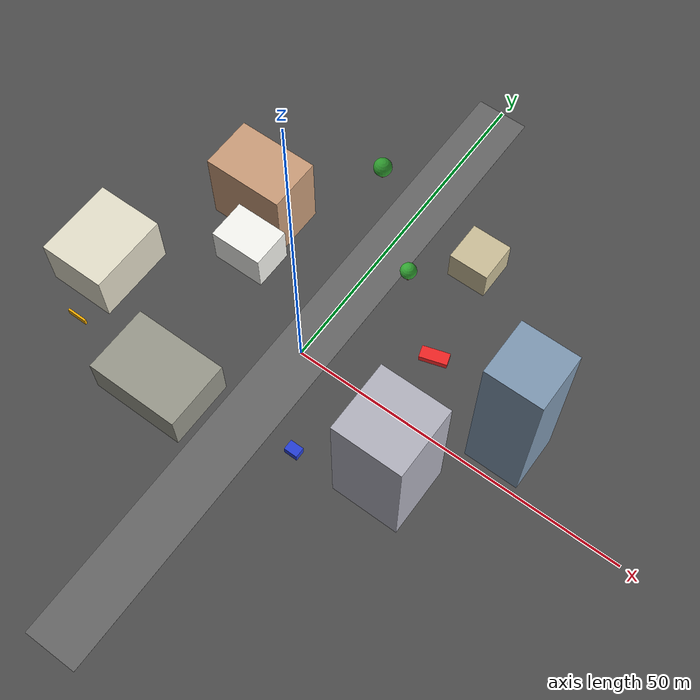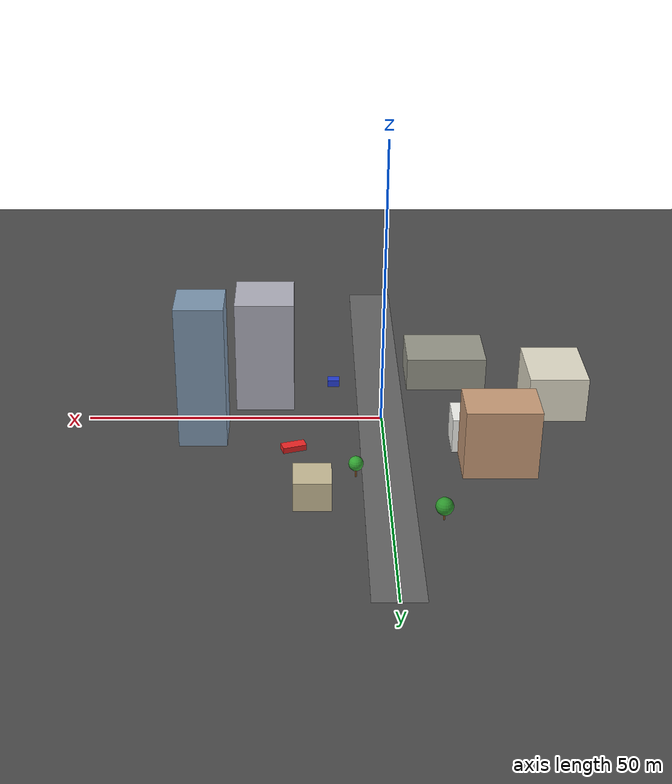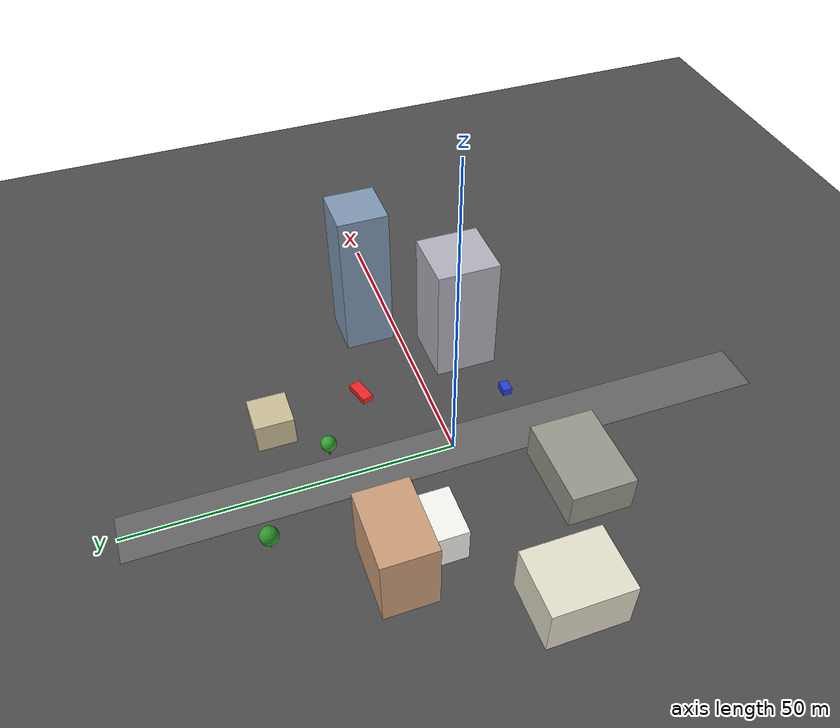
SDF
<?xml version="1.0" ?>
<!--
  urban_city.sdf — Minimal urban environment for VLA navigation benchmark.
  Uses simple geometry primitives styled as buildings, roads, and landmarks.
  Compatible with Gazebo Harmonic (gz-sim).
-->
<sdf version="1.9">
  <world name="urban_city">

    <!-- ── Physics ──────────────────────────────────────────────────────── -->
    <physics type="ode">
      <max_step_size>0.004</max_step_size>
      <real_time_factor>1.0</real_time_factor>
      <real_time_update_rate>250</real_time_update_rate>
    </physics>

    <!-- ── Plugins ──────────────────────────────────────────────────────── -->
    <plugin filename="gz-sim-physics-system"        name="gz::sim::systems::Physics"/>
    <plugin filename="gz-sim-scene-broadcaster-system" name="gz::sim::systems::SceneBroadcaster"/>
    <plugin filename="gz-sim-user-commands-system"  name="gz::sim::systems::UserCommands"/>
    <!-- Sensors plugin without render_engine — camera rendering is not
         needed for Milestone 1 and avoids Ogre assertion crashes on cleanup. -->
    <plugin filename="gz-sim-sensors-system"        name="gz::sim::systems::Sensors"/>
    <plugin filename="gz-sim-imu-system"            name="gz::sim::systems::Imu"/>
    <plugin filename="gz-sim-air-pressure-system"   name="gz::sim::systems::AirPressure"/>
    <plugin filename="gz-sim-magnetometer-system"   name="gz::sim::systems::Magnetometer"/>
    <plugin filename="gz-sim-navsat-system"          name="gz::sim::systems::NavSat"/>
    <plugin filename="gz-sim-apply-link-wrench-system" name="gz::sim::systems::ApplyLinkWrench"/>

    <!-- ── Lighting ─────────────────────────────────────────────────────── -->
    <light type="directional" name="sun">
      <cast_shadows>true</cast_shadows>
      <pose>0 0 50 0 0 0</pose>
      <diffuse>0.9 0.9 0.85 1</diffuse>
      <specular>0.3 0.3 0.3 1</specular>
      <direction>-0.5 0.3 -0.9</direction>
    </light>

    <!-- Ambient skylight -->
    <scene>
      <ambient>0.6 0.6 0.65 1.0</ambient>
      <background>0.55 0.72 0.95 1.0</background>
    </scene>

    <!-- ── Ground plane (asphalt) ───────────────────────────────────────── -->
    <model name="ground_plane">
      <static>true</static>
      <link name="link">
        <collision name="collision">
          <geometry><plane><normal>0 0 1</normal><size>200 200</size></plane></geometry>
        </collision>
        <visual name="visual">
          <geometry><plane><normal>0 0 1</normal><size>200 200</size></plane></geometry>
          <material>
            <ambient>0.25 0.25 0.25 1</ambient>
            <diffuse>0.3 0.3 0.3 1</diffuse>
          </material>
        </visual>
      </link>
    </model>

    <!-- ── Road (lighter strip) ─────────────────────────────────────────── -->
    <model name="road_ns">
      <static>true</static>
      <pose>0 0 0.01 0 0 0</pose>
      <link name="link">
        <visual name="visual">
          <geometry><box><size>8 100 0.02</size></box></geometry>
          <material>
            <ambient>0.35 0.35 0.35 1</ambient>
            <diffuse>0.4 0.4 0.4 1</diffuse>
          </material>
        </visual>
      </link>
    </model>

    <!-- ── Buildings ────────────────────────────────────────────────────── -->

    <!-- Building A — tall office tower -->
    <model name="building_a">
      <static>true</static>
      <pose>20 -8 10 0 0 0</pose>
      <link name="link">
        <collision name="col"><geometry><box><size>10 10 20</size></box></geometry></collision>
        <visual name="vis">
          <geometry><box><size>10 10 20</size></box></geometry>
          <material><ambient>0.6 0.6 0.65 1</ambient><diffuse>0.7 0.7 0.75 1</diffuse></material>
        </visual>
      </link>
    </model>

    <!-- Building B — medium apartment block -->
    <model name="building_b">
      <static>true</static>
      <pose>-18 15 6 0 0 0</pose>
      <link name="link">
        <collision name="col"><geometry><box><size>12 8 12</size></box></geometry></collision>
        <visual name="vis">
          <geometry><box><size>12 8 12</size></box></geometry>
          <material><ambient>0.72 0.55 0.40 1</ambient><diffuse>0.80 0.62 0.48 1</diffuse></material>
        </visual>
      </link>
    </model>

    <!-- Building C — short warehouse -->
    <model name="building_c">
      <static>true</static>
      <pose>-12 -15 3 0 0 0</pose>
      <link name="link">
        <collision name="col"><geometry><box><size>14 10 6</size></box></geometry></collision>
        <visual name="vis">
          <geometry><box><size>14 10 6</size></box></geometry>
          <material><ambient>0.55 0.55 0.50 1</ambient><diffuse>0.60 0.60 0.55 1</diffuse></material>
        </visual>
      </link>
    </model>

    <!-- Building D — glass-style tower -->
    <model name="building_d">
      <static>true</static>
      <pose>30 5 12.5 0 0 0</pose>
      <link name="link">
        <collision name="col"><geometry><box><size>8 8 25</size></box></geometry></collision>
        <visual name="vis">
          <geometry><box><size>8 8 25</size></box></geometry>
          <material><ambient>0.45 0.55 0.65 1</ambient><diffuse>0.5 0.6 0.7 1</diffuse></material>
        </visual>
      </link>
    </model>

    <!-- Building E — residential -->
    <model name="building_e">
      <static>true</static>
      <pose>-30 -5 4 0 0 0</pose>
      <link name="link">
        <collision name="col"><geometry><box><size>10 12 8</size></box></geometry></collision>
        <visual name="vis">
          <geometry><box><size>10 12 8</size></box></geometry>
          <material><ambient>0.85 0.82 0.75 1</ambient><diffuse>0.90 0.88 0.80 1</diffuse></material>
        </visual>
      </link>
    </model>

    <!-- Building F — small shop -->
    <model name="building_f">
      <static>true</static>
      <pose>12 25 2.5 0 0 0</pose>
      <link name="link">
        <collision name="col"><geometry><box><size>6 6 5</size></box></geometry></collision>
        <visual name="vis">
          <geometry><box><size>6 6 5</size></box></geometry>
          <material><ambient>0.75 0.70 0.55 1</ambient><diffuse>0.80 0.75 0.60 1</diffuse></material>
        </visual>
      </link>
    </model>

    <!-- ── Landmark objects ─────────────────────────────────────────────── -->

    <!-- Red car (east side) — referenced by Task 1 -->
    <model name="red_car">
      <static>true</static>
      <pose>15 10 0.5 0 0 0.3</pose>
      <link name="link">
        <collision name="col"><geometry><box><size>4 1.8 1.0</size></box></geometry></collision>
        <visual name="vis">
          <geometry><box><size>4 1.8 1.0</size></box></geometry>
          <material><ambient>0.85 0.10 0.10 1</ambient><diffuse>0.95 0.15 0.15 1</diffuse></material>
        </visual>
      </link>
    </model>

    <!-- Blue dumpster (alley) — referenced by Task 5 -->
    <model name="blue_dumpster">
      <static>true</static>
      <pose>8 -12 0.6 0 0 0</pose>
      <link name="link">
        <collision name="col"><geometry><box><size>2 1.5 1.2</size></box></geometry></collision>
        <visual name="vis">
          <geometry><box><size>2 1.5 1.2</size></box></geometry>
          <material><ambient>0.10 0.20 0.75 1</ambient><diffuse>0.15 0.25 0.85 1</diffuse></material>
        </visual>
      </link>
    </model>

    <!-- White house — referenced by Task 7 -->
    <model name="white_house">
      <static>true</static>
      <pose>-15 8 3 0 0 0</pose>
      <link name="link">
        <collision name="col"><geometry><box><size>8 6 6</size></box></geometry></collision>
        <visual name="vis">
          <geometry><box><size>8 6 6</size></box></geometry>
          <material><ambient>0.92 0.92 0.90 1</ambient><diffuse>0.97 0.97 0.95 1</diffuse></material>
        </visual>
      </link>
    </model>

    <!-- Tree cluster (decorative cylinders) -->
    <model name="tree_1">
      <static>true</static>
      <pose>5 18 1.5 0 0 0</pose>
      <link name="link">
        <visual name="trunk">
          <pose>0 0 -1 0 0 0</pose>
          <geometry><cylinder><radius>0.15</radius><length>2</length></cylinder></geometry>
          <material><ambient>0.4 0.25 0.1 1</ambient><diffuse>0.5 0.3 0.12 1</diffuse></material>
        </visual>
        <visual name="canopy">
          <pose>0 0 0.8 0 0 0</pose>
          <geometry><sphere><radius>1.2</radius></sphere></geometry>
          <material><ambient>0.15 0.55 0.15 1</ambient><diffuse>0.2 0.65 0.2 1</diffuse></material>
        </visual>
      </link>
    </model>

    <model name="tree_2">
      <static>true</static>
      <pose>-8 30 1.5 0 0 0</pose>
      <link name="link">
        <visual name="trunk">
          <pose>0 0 -1 0 0 0</pose>
          <geometry><cylinder><radius>0.15</radius><length>2</length></cylinder></geometry>
          <material><ambient>0.4 0.25 0.1 1</ambient><diffuse>0.5 0.3 0.12 1</diffuse></material>
        </visual>
        <visual name="canopy">
          <pose>0 0 0.8 0 0 0</pose>
          <geometry><sphere><radius>1.4</radius></sphere></geometry>
          <material><ambient>0.12 0.50 0.12 1</ambient><diffuse>0.18 0.60 0.18 1</diffuse></material>
        </visual>
      </link>
    </model>

    <!-- Construction barriers — referenced by Task 8 area -->
    <model name="barrier_1">
      <static>true</static>
      <pose>-28 -14 0.5 0 0 0</pose>
      <link name="link">
        <visual name="vis">
          <geometry><box><size>3 0.3 1.0</size></box></geometry>
          <material><ambient>0.9 0.6 0.0 1</ambient><diffuse>1.0 0.7 0.0 1</diffuse></material>
        </visual>
      </link>
    </model>

    <model name="barrier_2">
      <static>true</static>
      <pose>-32 -8 0.5 0 0 0.7854</pose>
      <link name="link">
        <visual name="vis">
          <geometry><box><size>3 0.3 1.0</size></box></geometry>
          <material><ambient>0.9 0.6 0.0 1</ambient><diffuse>1.0 0.7 0.0 1</diffuse></material>
        </visual>
      </link>
    </model>

  </world>
</sdf>
